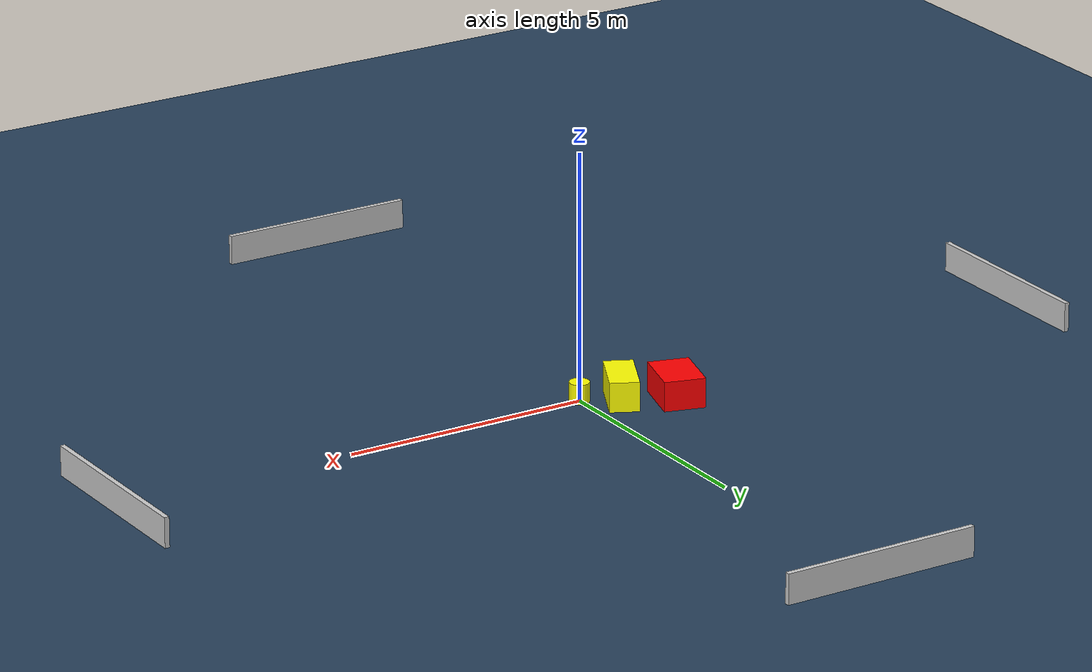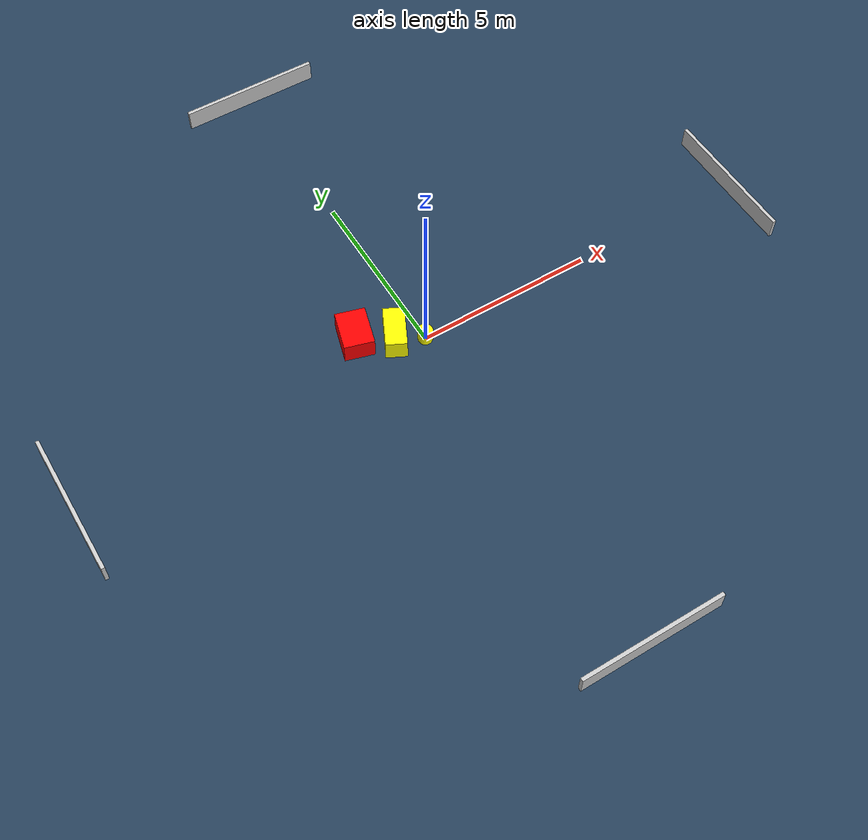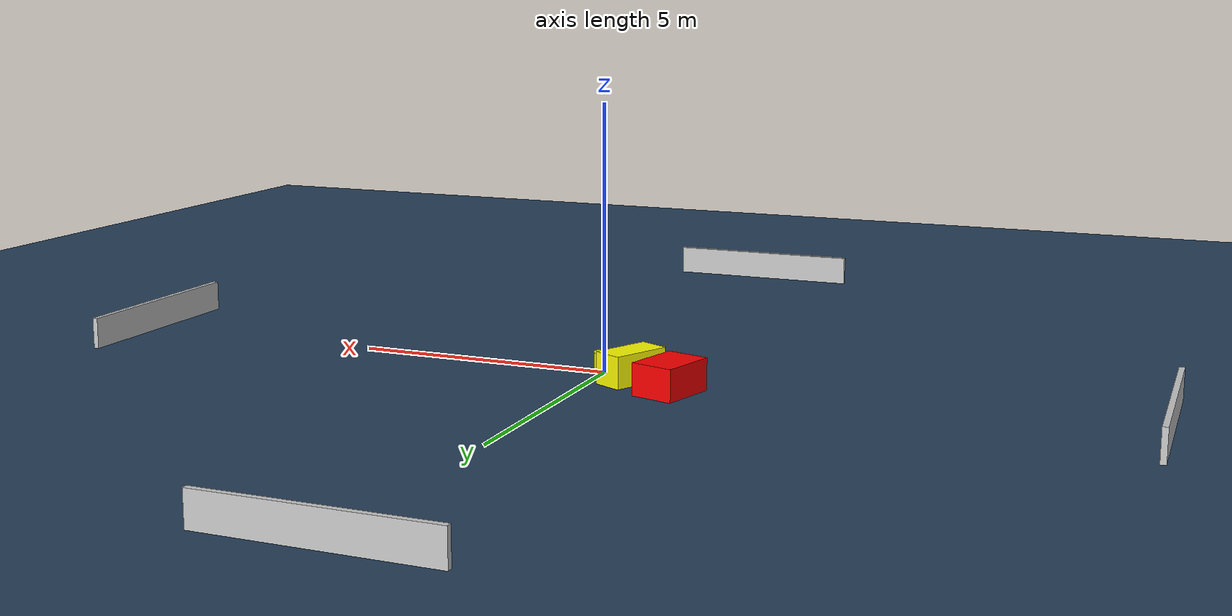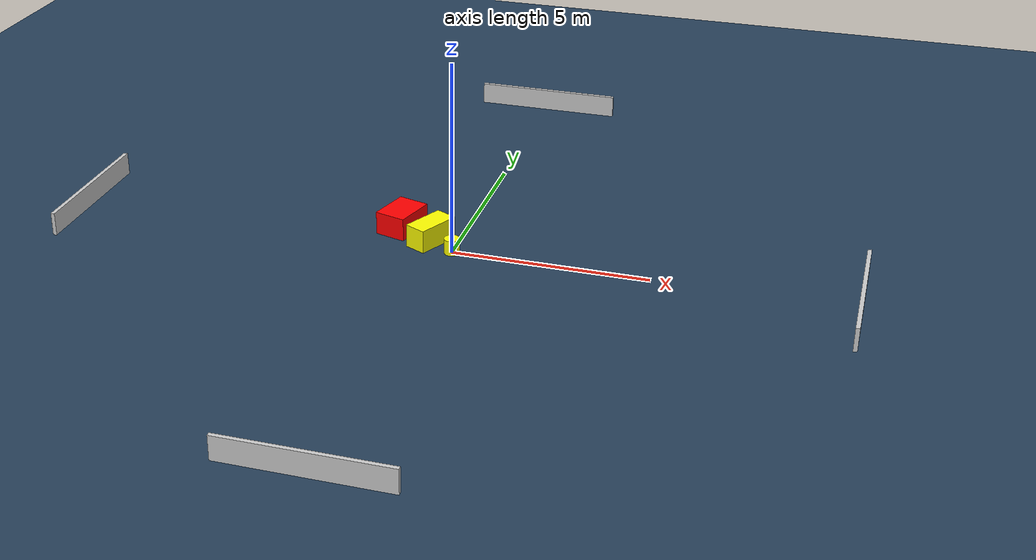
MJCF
<?xml version="1.0" ?>
<mujoco model="generated_environment">
  <option timestep="0.01" integrator="RK4" cone="elliptic"/>
  <default>
    <geom density="1"/>
  </default>
  <asset>
    <texture builtin="gradient" height="3072" name="skybox" rgb1="0.3 0.5 0.7" rgb2="0 0 0" type="skybox" width="512"/>
    <texture builtin="checker" height="300" name="groundplane" rgb1="0.2 0.3 0.4" rgb2="0.1 0.2 0.3" type="2d" width="300"/>
    <material name="groundplane" reflectance="0.2" texrepeat="5 5" texture="groundplane"/>
  </asset>
  <worldbody>
    <light dir="0 0 -1" directional="true" pos="0 0 1.5"/>
    <geom condim="3" friction="0.5 0.005 0.001" material="groundplane" name="floor" pos="0 0 0" size="0 0 0.05" type="plane"/>
    <body name="walls">
      <geom name="wall_1" condim="4" pos="-10.0 0.0 0.3" rgba="0.800000011920929 0.800000011920929 0.800000011920929 1.0" size="0.05 2.0 0.3" type="box"/>
      <geom name="wall_2" condim="4" pos="10.0 0.0 0.3" rgba="0.800000011920929 0.800000011920929 0.800000011920929 1.0" size="0.05 2.0 0.3" type="box"/>
      <geom name="wall_3" condim="4" pos="0.0 -10.0 0.3" rgba="0.800000011920929 0.800000011920929 0.800000011920929 1.0" size="2.0 0.05 0.3" type="box"/>
      <geom name="wall_4" condim="4" pos="0.0 10.0 0.3" rgba="0.800000011920929 0.800000011920929 0.800000011920929 1.0" size="2.0 0.05 0.3" type="box"/>
    </body>
    <body name="robot">
      <joint name="joint_x" type="slide" pos="0 0 0" axis="1 0 0"/>
      <joint name="joint_y" type="slide" pos="0 0 0" axis="0 1 0"/>
      <geom name="robot" type="cylinder" pos="0.0 0.0 0.2" size="0.2 0.2 0.0" mass="5.0" friction="1.0 0.005 0.0001" condim="4" rgba="1.0 1.0 0.0 1.0"/>
    </body>
    <body name="obstacle_1_movable">
      <geom name="obstacle_1_movable" condim="4" pos="-0.6843313609597297 0.40575358184693416 0.3" euler="0 0 243.71277366051666" friction="0.0 0.005 0.001" rgba="1.0 1.0 0.0 1.0" size="0.5813375461303836 0.29149578782336333 0.3" type="box" mass="0.1"/>
      <joint type="free"/>
    </body>
    <body name="obstacle_2_static">
      <geom name="obstacle_2_static" condim="4" pos="-1.6139161832216666 0.9005345056443871 0.3" euler="0 0 344.0248067749855" friction="0.0 0.005 0.001" rgba="1.0 0.0 0.0 1.0" size="0.41217204972004495 0.5547108701931929 0.3" type="box"/>
    </body>
  </worldbody>
  <actuator>
    <motor name="actuator_x" joint="joint_x" gear="1" ctrlrange="-1 1"/>
    <motor name="actuator_y" joint="joint_y" gear="1" ctrlrange="-1 1"/>
  </actuator>
</mujoco>
